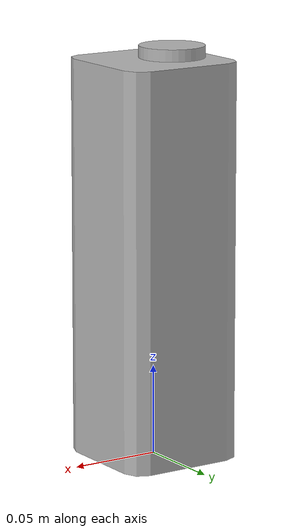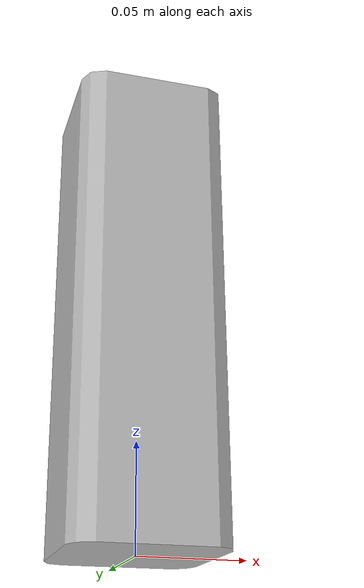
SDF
<?xml version="1.0" ?>
<sdf version="1.6">
<model name="clf_baerenmarke">
  <link name="link">
    <pose>0 0 0.11 0 0 0</pose>
    <inertial>
      <mass>1.0</mass>
      <inertia>
        <ixx>0.004441667</ixx>
        <ixy>0</ixy>
        <ixz>0</ixz>
        <iyy>0.004441667</iyy>
        <iyz>0</iyz>
        <izz>0.000816667</izz>
      </inertia>
    </inertial>
    <collision name="collision">
      <geometry>
        <mesh>
          <uri>model://clf_baerenmarke/meshes/clf_baerenmarke.dae</uri>
        </mesh>
      </geometry>
      <surface>
        <friction>
          <ode>
            <mu>1.0</mu>
            <mu2>1.0</mu2>
          </ode>
        </friction>
        <contact>
          <ode>
            <kp>10000000.0</kp>
            <kd>1.0</kd>
            <min_depth>0.001</min_depth>
            <max_vel>0.1</max_vel>
          </ode>
        </contact>
      </surface>
    </collision>
    <visual name="visual">
      <geometry>
        <mesh>
          <uri>model://clf_baerenmarke/meshes/clf_baerenmarke.dae</uri>
        </mesh>
      </geometry>
    </visual>
  </link>
</model>
</sdf>
